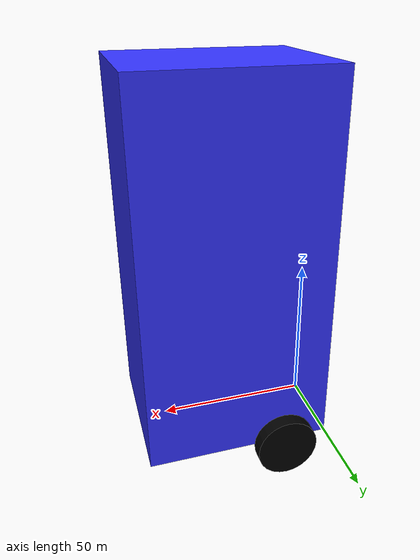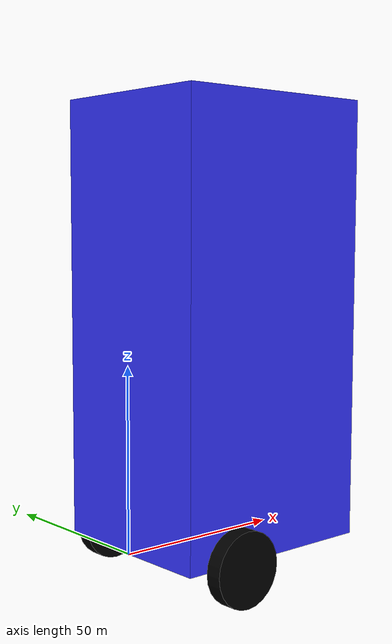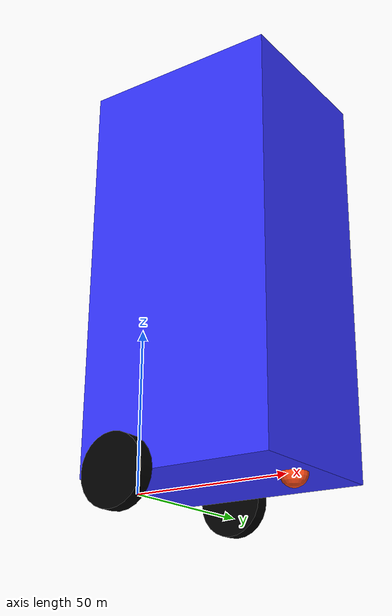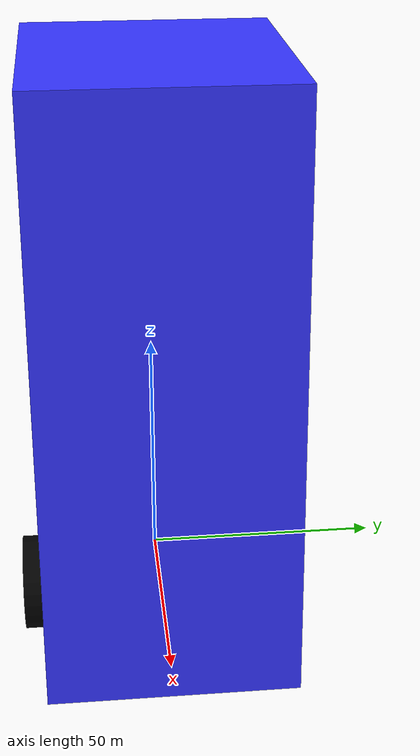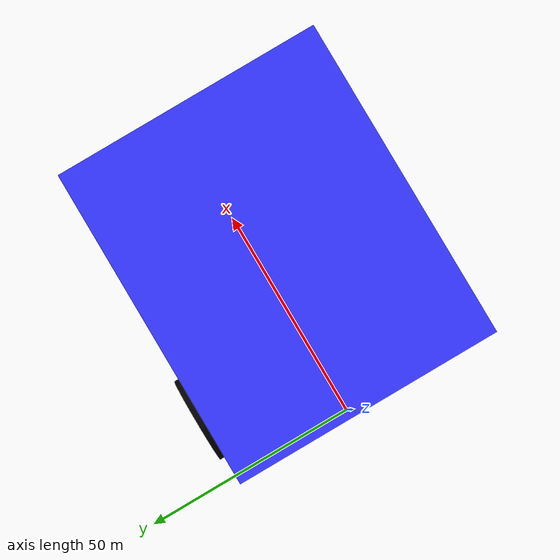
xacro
<?xml version="1.0"?>
<robot name="robot" xmlns:xacro="http://www.ros.org/wiki/xacro" >

    <xacro:include filename="inertial_macros.xacro"/>

    <material name="white">
        <color rgba="1 1 1 1" />
    </material>

    <material name="orange">
        <color rgba="1 0.3 0.1 1"/>
    </material>

    <material name="blue">
        <color rgba="0.2 0.2 1 1"/>
    </material>

    <material name="black">
        <color rgba="0 0 0 1"/>
    </material>

    <!-- BASE LINK -->

    <link name="base_link">

    </link>

    <!-- CHASSIS LINK -->

    <joint name="chassis_joint" type="fixed">
        <parent link="base_link"/>
        <child link="chassis"/>
        <origin xyz="-0.1 0 0"/>
    </joint>

    <link name="chassis">
        <visual>
            <origin xyz="29.9 0 60.0"/>
            <geometry>
                <box size="59.8 49.6 120.0"/>
            </geometry>
            <material name="blue"/>
        </visual>
        <collision>
            <origin xyz="29.9 0 60.0"/>
            <geometry>
                <box size="59.8 49.6 120.0"/>
            </geometry>
        </collision>
        <xacro:inertial_box mass="20.0" x="59.8" y="49.6" z="120.0">
            <origin xyz="29.9 0 60.0" rpy="0 0 0"/>
        </xacro:inertial_box>
    </link>

    <!-- LEFT WHEEL LINK -->

    <joint name="left_wheel_joint" type="continuous">
        <parent link="base_link"/>
        <child link="left_wheel"/>
        <origin xyz="15 27.6 0" rpy="-${pi/2} 0 0" />
        <axis xyz="0 0 1"/>
    </joint>

    <link name="left_wheel">
        <visual>
            <geometry>
                <cylinder radius="10.12" length="4.5"/>
            </geometry>
            <material name="black"/>
        </visual>
        <collision>
            <geometry>
                <cylinder radius="10.12" length="4.5"/>
            </geometry>
        </collision>
        <xacro:inertial_cylinder mass="2.0" length="4.5" radius="10.12">
            <origin xyz="0 0 0" rpy="0 0 0"/>
        </xacro:inertial_cylinder>
    </link>

    <!-- RIGHT WHEEL LINK -->

    <joint name="right_wheel_joint" type="continuous">
        <parent link="base_link"/>
        <child link="right_wheel"/>
        <origin xyz="15 -27.6 0" rpy="${pi/2} 0 0" />
        <axis xyz="0 0 -1"/>
    </joint>

    <link name="right_wheel">
        <visual>
            <geometry>
                <cylinder radius="10.12" length="4.5"/>
            </geometry>
            <material name="black"/>
        </visual>
        <collision>
            <geometry>
                <cylinder radius="10.12" length="4.5"/>
            </geometry>
        </collision>
        <xacro:inertial_cylinder mass="2.0" length="4.5" radius="10.12">
            <origin xyz="0 0 0" rpy="0 0 0"/>
        </xacro:inertial_cylinder>
    </link>

    <!-- CASTER WHEEL LINK -->

    <joint name="caster_wheel_joint" type="fixed">
        <parent link="chassis"/>
        <child link="caster_wheel"/>
        <origin xyz="52.24 0 0"/>
    </joint>

    <link name="caster_wheel">
        <visual>
            <geometry>
                <sphere radius="4.0"/>
            </geometry>
            <material name="orange"/>
        </visual>
        <collision>
            <geometry>
                <sphere radius="0.05"/>
            </geometry>
        </collision>
        <xacro:inertial_sphere mass="0.5" radius="4.0">
            <origin xyz="0 0 0" rpy="0 0 0"/>
        </xacro:inertial_sphere>
    </link>

</robot>
